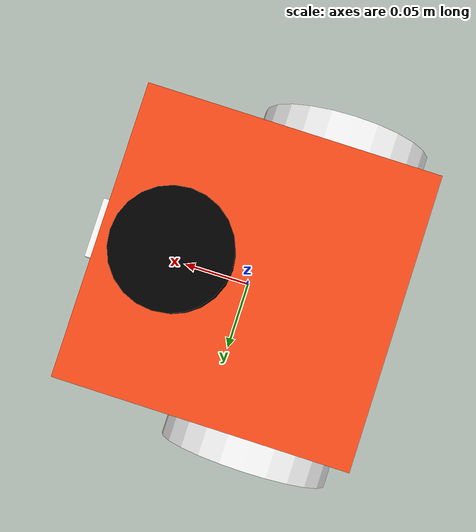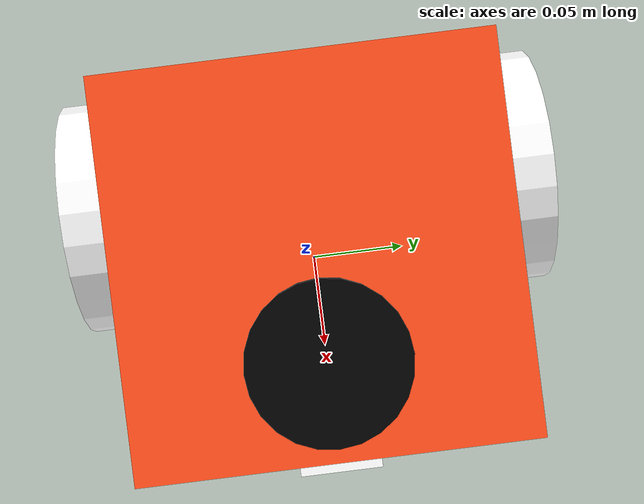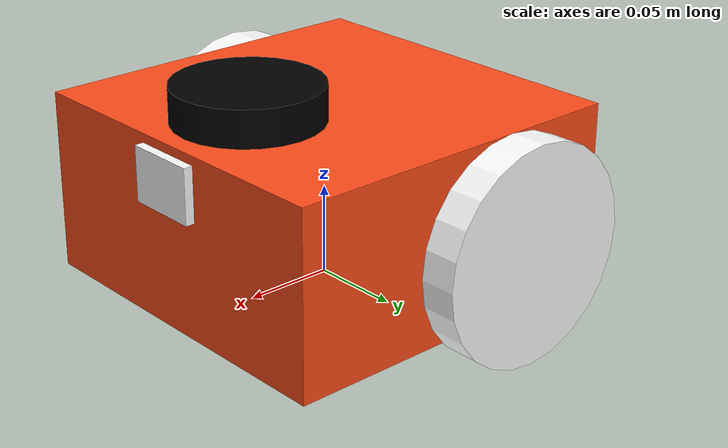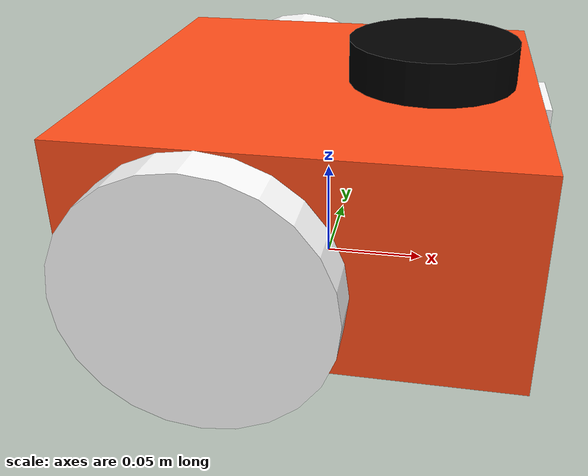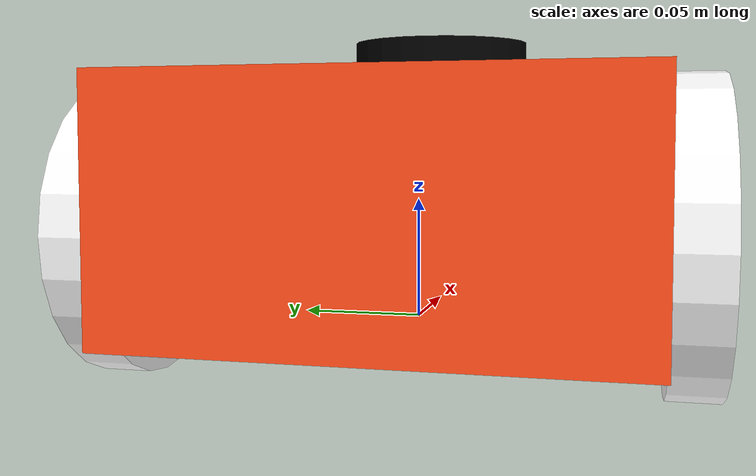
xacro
<?xml version="1.0"?>
<robot xmlns:xacro="http://www.ros.org/wiki/xacro">

    <xacro:include filename="bot_inertials.urdf.xacro"/>
    <xacro:include filename="lidar_camera.urdf.xacro"/>

    <material name="white">
        <color rgba="1 1 1 1"/>
    </material>

    <material name="orange">
        <color rgba="1 0.3 0.1 1"/>
    </material>

    <material name="black">
        <color rgba="0 0 0 1"/>
    </material>

    <!-- BASE LINK -->
    <link name="base_link">
    </link>

    <!-- CHASSIS LINK -->
    <joint name="chassis_joint" type="fixed">
        <parent link="base_link"/>
        <child link="chassis"/>
        <origin xyz="-0.1 0 0"/>
    </joint>

    <gazebo reference="chassis">
        <material>Gazebo/Orange</material>
    </gazebo>

    <link name="chassis">
        <visual>
            <origin xyz="0.1 0 0.05"/>
            <geometry>
                <box size="0.2 0.2 0.1"/>
            </geometry>
            <material name="orange"/>
        </visual>
        <collision>
            <origin xyz="0.1 0 0.05"/>
            <geometry>
                <box size="0.2 0.2 0.1"/>
            </geometry>
        </collision>
        <xacro:inertial_box mass="0.5" x="0.2" y="0.2" z="0.1">
            <origin xyz="0.1 0 0.05" rpy="0 0 0"/>
        </xacro:inertial_box>
    </link>

    <!-- LEFT WHEEL LINK -->
    <joint name="left_wheel_joint" type="continuous">
        <parent link="base_link"/>
        <child link="left_wheel"/>
        <origin xyz="-0.035 0.11 0.04" rpy="-${pi/2} 0 0"/>
        <axis xyz="0 0 1"/>
    </joint>

    <link name="left_wheel">
        <visual>
            <geometry>
                <cylinder radius="0.06" length="0.02"/>
            </geometry>
            <material name="white"/>
        </visual>
        <collision>
            <geometry>
                <cylinder radius="0.06" length="0.02"/>
            </geometry>
        </collision>
        <xacro:inertial_cylinder mass="0.1" length="0.02" radius="0.06">
            <origin xyz="0 0 0" rpy="0 0 0"/>
        </xacro:inertial_cylinder>
    </link>

    <!-- RIGHT WHEEL LINK -->
    <joint name="right_wheel_joint" type="continuous">
        <parent link="base_link"/>
        <child link="right_wheel"/>
        <origin xyz="-0.035 -0.11 0.04" rpy="${pi/2} 0 0"/>
        <axis xyz="0 0 -1"/>
    </joint>

    <link name="right_wheel">
        <visual>
            <geometry>
                <cylinder radius="0.06" length="0.02"/>
            </geometry>
            <material name="white"/>
        </visual>
        <collision>
            <geometry>
                <cylinder radius="0.06" length="0.02"/>
            </geometry>
        </collision>
        <xacro:inertial_cylinder mass="0.1" length="0.02" radius="0.06">
            <origin xyz="0 0 0" rpy="0 0 0"/>
        </xacro:inertial_cylinder>
    </link>

    <!-- CASTER WHEEL LINK -->
    <joint name="caster_wheel_joint" type="fixed">
        <parent link="chassis"/>
        <child link="caster_wheel"/>
        <origin xyz="0.161 0 0"/>
    </joint>
    <gazebo reference="caster_wheel">
        <material>Gazebo/Black</material>
        <mu1 value="0.01"/>
        <mu2 value="0.01"/>
    </gazebo>

    <link name="caster_wheel">
        <visual>
            <geometry>
                <sphere radius="0.021"/>
            </geometry>
            <material name="black"/>
        </visual>
        <collision>
            <geometry>
                <sphere radius="0.021"/>
            </geometry>
        </collision>
        <xacro:inertial_sphere mass="0.1" radius="0.021">
            <origin xyz="0 0 0" rpy="0 0 0"/>
        </xacro:inertial_sphere>
    </link>
</robot>

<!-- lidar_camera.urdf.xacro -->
<robot xmlns:xacro="http://www.ros.org/wiki/xacro">

    <!-- Lidar Joint and Link -->
    <joint name="lidar_joint" type="fixed">
        <parent link="chassis"/>
        <child link="lidar_link"/>
        <origin xyz="0.15 0 0.11" rpy="0 0 0"/>
    </joint>

    <link name="lidar_link">
        <visual>
            <geometry>
                <cylinder radius="0.04" length="0.02"/>
            </geometry>
            <material name="black"/>
        </visual>
        <collision>
            <geometry>
                <cylinder radius="0.05" length="0.04"/>
            </geometry>
        </collision>
        <xacro:inertial_cylinder mass="0.1" length="0.04" radius="0.05">
            <origin xyz="0 0 0" rpy="0 0 0"/>
        </xacro:inertial_cylinder>
    </link>

    <gazebo reference="lidar_link">
        <material>Gazebo/Black</material>
        <sensor name="lidar" type="ray">
            <pose>0 0 0 0 0 0</pose>
            <always_on>true</always_on>
            <visualize>true</visualize>
            <update_rate>10</update_rate>
            <ray>
            <scan>
                <horizontal>
                    <samples>360</samples>
                    <resolution>1.00000</resolution>
                    <min_angle>-3.14</min_angle>
                    <max_angle>3.14</max_angle>
                </horizontal>
            </scan>
            <range>
                <min>0.3</min>
                <max>12</max>
                <resolution>0.015000</resolution>
            </range>
            <noise>
                <type>gaussian</type>
                <mean>0.0</mean>
                <stddev>0.01</stddev>
            </noise>
            </ray>
            <plugin name="scan" filename="libgazebo_ros_ray_sensor.so">
            <ros>
                <remapping>~/out:=scan</remapping>
            </ros>
            <output_type>sensor_msgs/LaserScan</output_type>
            <frame_name>lidar_link</frame_name>
            </plugin>
        </sensor>
    </gazebo>

    <!-- Camera Joint and Link -->
    <joint name="camera_joint" type="fixed">
        <parent link="chassis"/>
        <child link="camera_link"/>
        <origin xyz="0.2 0 0.08" rpy="0 0 0"/>
    </joint>

    <link name="camera_link">
        <visual>
            <geometry>
                <box size="0.01 0.04 0.03"/>
            </geometry>
            <material name="white"/>
        </visual>
    </link>

    <joint name="camera_optical_joint" type="fixed">
        <parent link="camera_link"/>
        <child link="camera_link_optical"/>
        <origin xyz="0 0 0" rpy="${-pi/2} 0 ${-pi/2}"/>
    </joint>

    <link name="camera_link_optical"></link>

    <gazebo reference="camera_link">
        <material>Gazebo/White</material>

        <sensor name="camera" type="camera">
            <pose> 0 0 0 0 0 0 </pose>
            <visualize>true</visualize>
            <update_rate>10</update_rate>
            <camera>
                <horizontal_fov>1.089</horizontal_fov>
                <image>
                    <format>R8G8B8</format>
                    <width>640</width>
                    <height>480</height>
                </image>
                <clip>
                    <near>0.05</near>
                    <far>8.0</far>
                </clip>
            </camera>
            <plugin name="camera_controller" filename="libgazebo_ros_camera.so">
                <frame_name>camera_link_optical</frame_name>
            </plugin>
        </sensor>
    </gazebo>

</robot>
